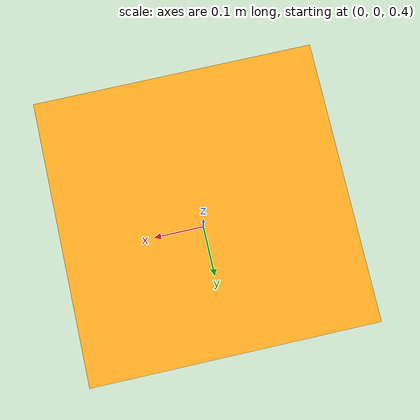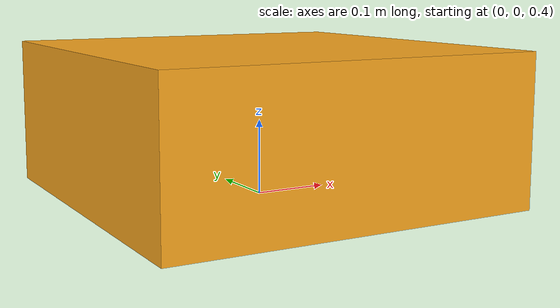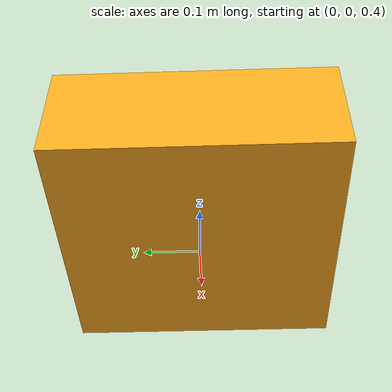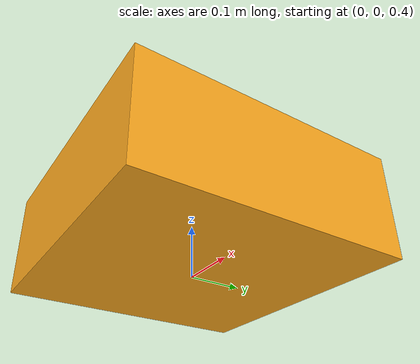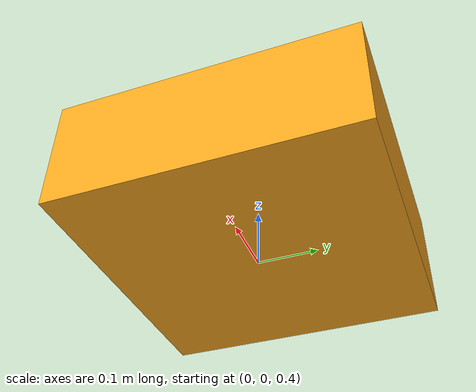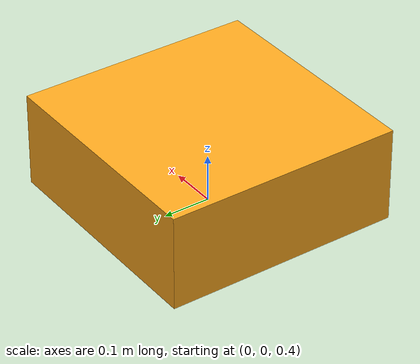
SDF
<?xml version="1.0" encoding="UTF-8"?>
<sdf version="1.6">
    <model name="swarm_box">
        <link name="link_box">
            <pose>0 0 0.5 0 0 0</pose>
            <inertial>
                <mass>1</mass>
                <inertia>
                    <ixx>0.166666</ixx>
                    <iyy>0.166666</iyy>
                    <izz>0.166666</izz>
                    <ixy>0</ixy>
                    <ixz>0</ixz>
                    <iyz>0</iyz>
                </inertia>
            </inertial>

            <visual name="visual">
                <geometry>
                    <box>
                        <size>0.5 0.5 0.2</size>
                    </box>
                </geometry>
                <material>
                    <lighting>1</lighting>
                    <script>
                        <uri>file://media/materials/scripts/gazebo.material</uri>
                        <name>Gazebo/Grey</name>
                    </script>
                    <shader type='vertex'>
                        <normal_map>__default__</normal_map>
                    </shader>
                    <ambient>1 0 0 1</ambient>
                    <diffuse>0.99 0.66 0.12 1</diffuse>
                    <specular>0.01 0.01 0.01 1</specular>
                    <emissive>1 0 0 1</emissive>
                </material>
                <transparency>0</transparency>
                <cast_shadows>1</cast_shadows>
            </visual>
            <collision name="collision">
                <geometry>
                    <box>
                        <size>0.5 0.5 0.2</size>
                    </box>
                </geometry>
            </collision>
        </link>
    </model>
</sdf>
